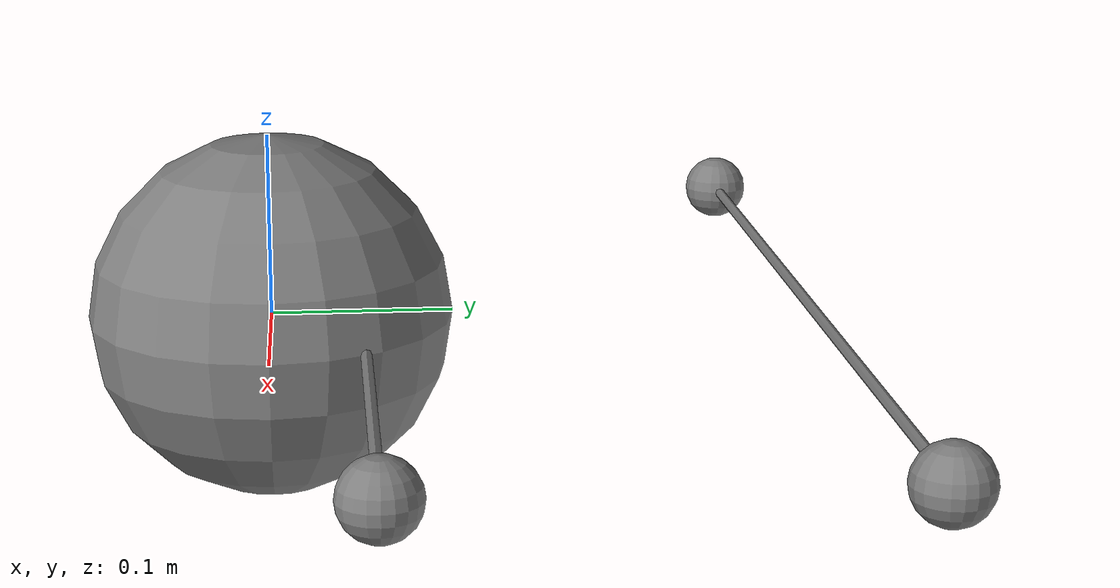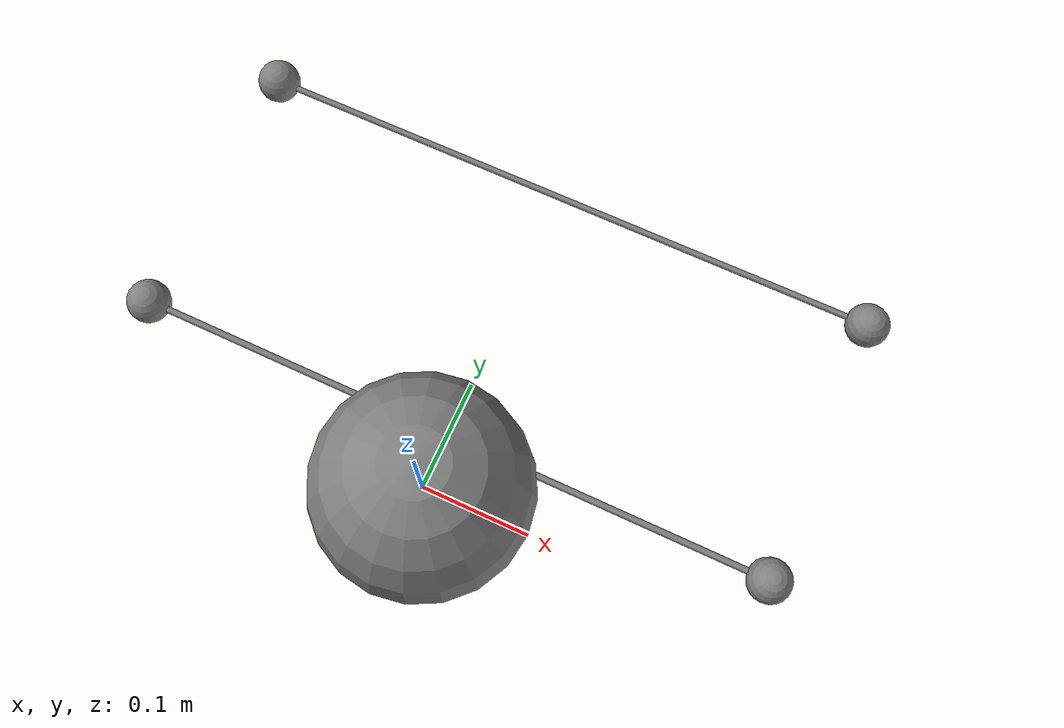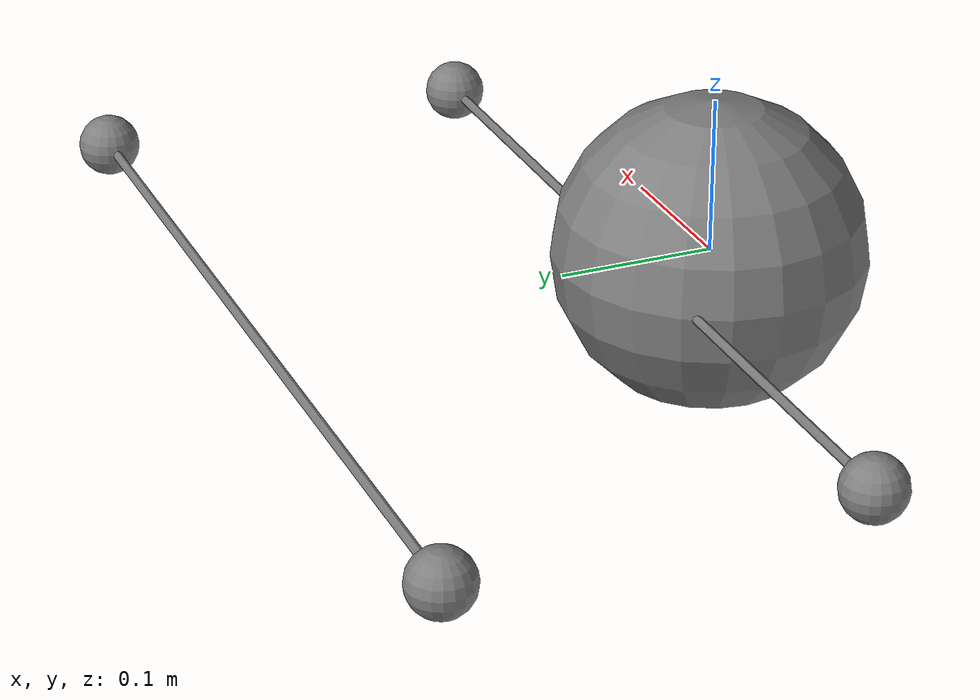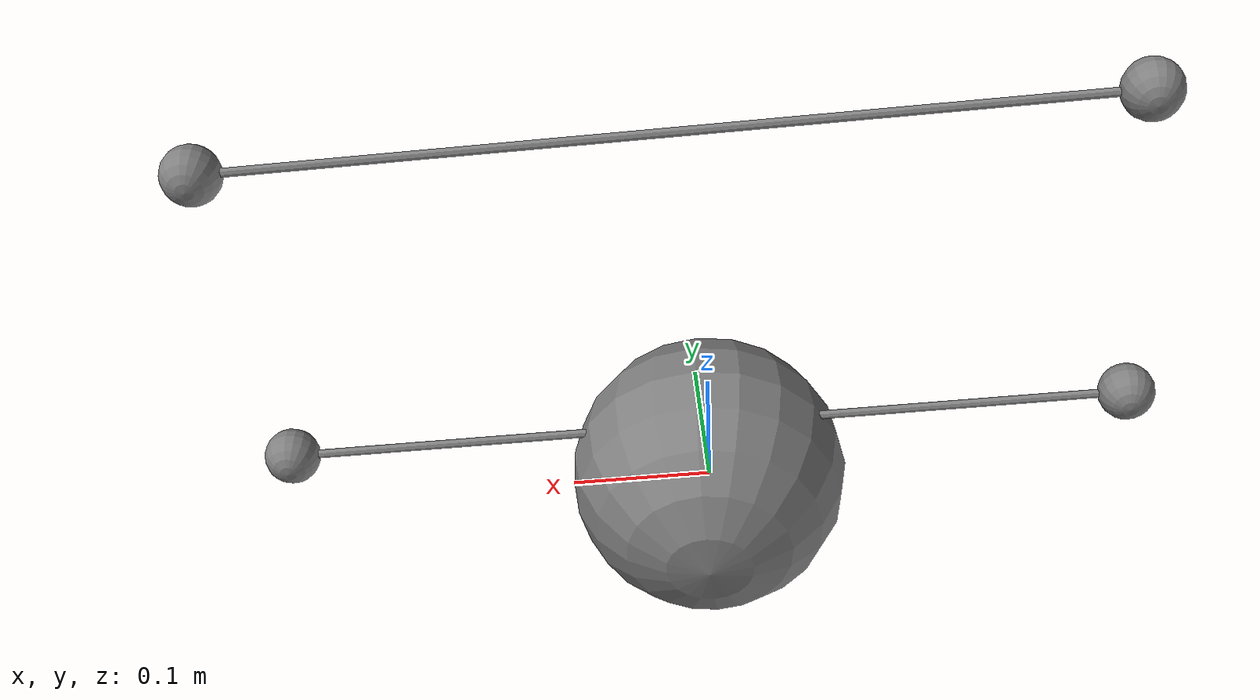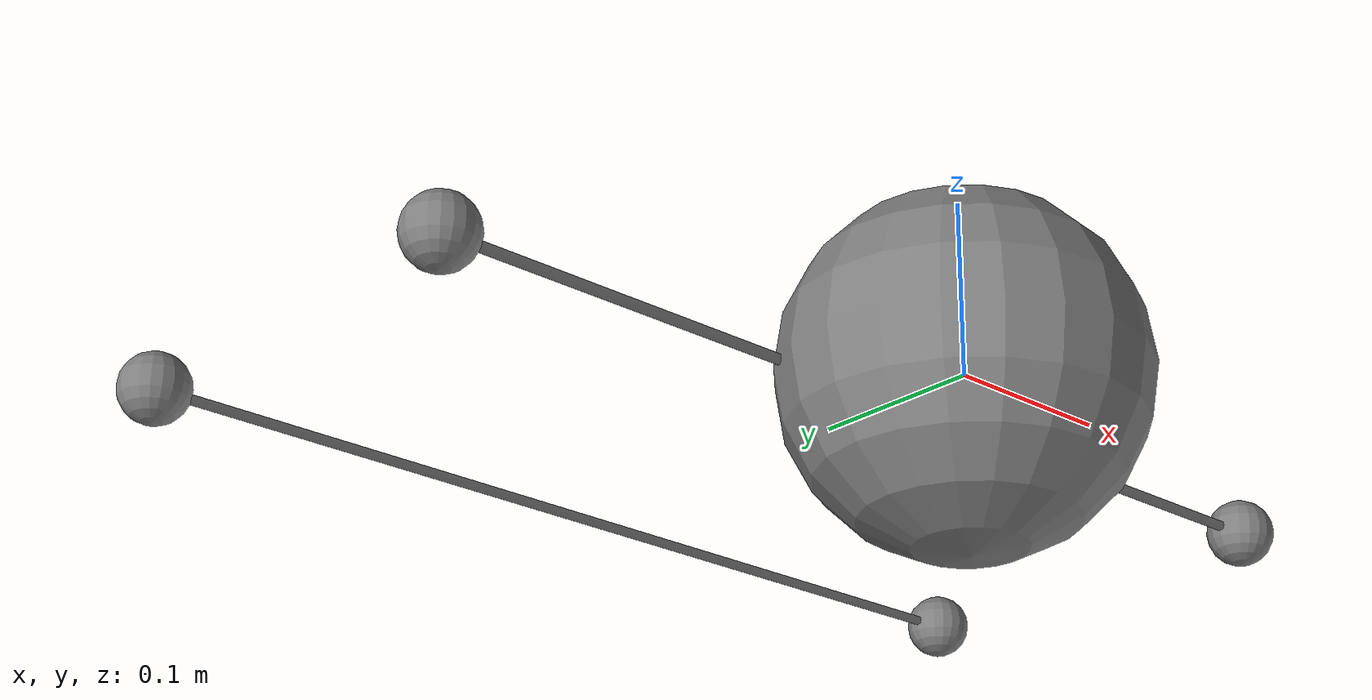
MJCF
<mujoco>
  <worldbody>
    <body name="b1" pos="-0.3 0.3 0">
      <joint name="j1" type="hinge" axis="0 0 1"/>
      <geom type="sphere" size="0.02"/>
      <site name="s1" pos="0 0 0"/>
    </body>
    <body name="b2" pos="0.3 0.3 0">
      <joint name="j2" type="hinge" axis="0 0 1"/>
      <geom type="sphere" size="0.02"/>
      <site name="s2" pos="0 0 0"/>
    </body>
    <body name="b3" pos="-0.3 0.05 0">
      <joint name="j3" type="hinge" axis="0 0 1"/>
      <geom type="sphere" size="0.02"/>
      <site name="s3" pos="0 0 0"/>
    </body>
    <body name="wrap_body" pos="0 0 0">
      <geom name="wrap_sphere" type="sphere" size="0.1"/>
    </body>
    <body name="b4" pos="0.3 0.05 0">
      <joint name="j4" type="hinge" axis="0 0 1"/>
      <geom type="sphere" size="0.02"/>
      <site name="s4" pos="0 0 0"/>
    </body>
  </worldbody>
  <tendon>
    <spatial name="t_straight">
      <site site="s1"/>
      <site site="s2"/>
    </spatial>
    <spatial name="t_wrapped">
      <site site="s3"/>
      <geom geom="wrap_sphere"/>
      <site site="s4"/>
    </spatial>
  </tendon>
</mujoco>
